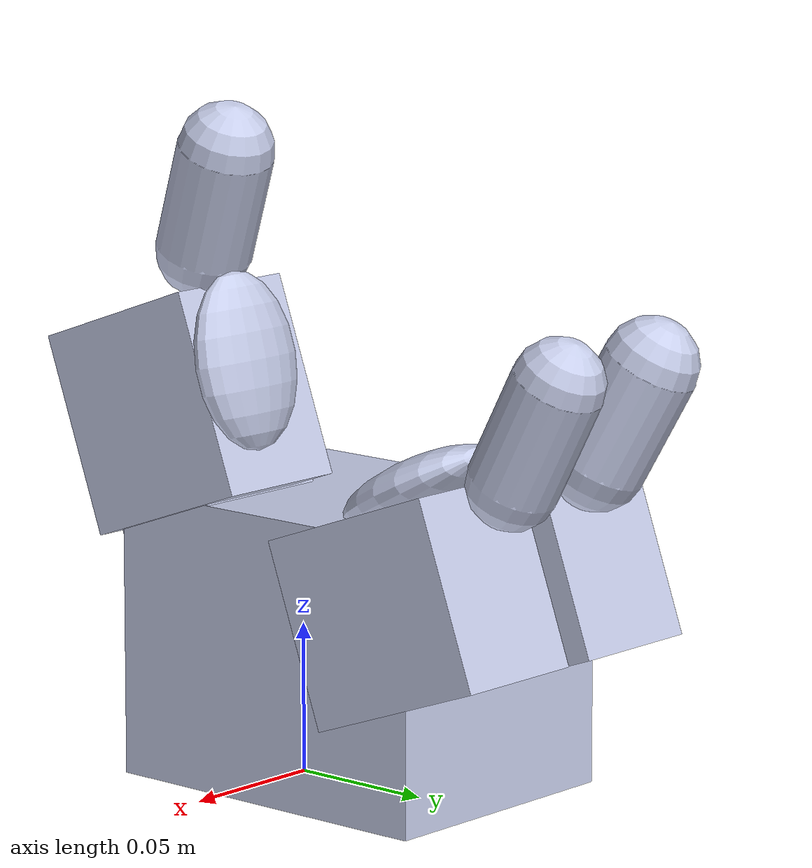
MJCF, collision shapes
<?xml version='1.0' encoding='UTF-8'?>
<mujoco model="DP-Flex_closed_kinematics">
  <option timestep="1e-4"/>
  <option gravity="0 0 0"/>
  <option integrator="implicitfast"/>

  <compiler meshdir="assets" eulerseq="zyx" autolimits="true"/>

  <default>
    <joint damping="0.2" armature="0.01" frictionloss="0.01"/>
    <geom condim="4" contype="1" conaffinity="15" friction="0.9 0.2 0.2" solref="0.001 2"/>
    <motor ctrllimited="true"/>
    <position ctrllimited="true"/>
    <equality solref="0.001 2"/>
    <default class="visualgeom">
      <geom material="visualgeom" condim="1" contype="0" conaffinity="0"/>
    </default>
  </default>

  <asset>
    <texture type="skybox" builtin="gradient" rgb1="1 1 1" rgb2="0.5 0.5 0.5" width="265" height="256"/>
    <mesh name="base_link" file="base_link.STL"/>
    <mesh name="Link_left_abduction" file="Link_left_abduction.STL"/>
    <mesh name="Link_left_flexion" file="Link_left_flexion.STL"/>
    <mesh name="Link_left_finray_proxy" file="Link_left_finray_proxy.STL"/>
    <mesh name="Link_right_abduction" file="Link_right_abduction.STL"/>
    <mesh name="Link_right_flexion" file="Link_right_flexion.STL"/>
    <mesh name="Link_right_finray_proxy" file="Link_right_finray_proxy.STL"/>
    <mesh name="Link_thumb_rotation" file="Link_thumb_rotation.STL"/>
    <mesh name="Link_thumb_abduction" file="Link_thumb_abduction.STL"/>
    <mesh name="Link_thumb_flexion" file="Link_thumb_flexion.STL"/>
    <mesh name="Link_thumb_finray_proxy" file="Link_thumb_finray_proxy.STL"/>
    <texture name="texplane" type="2d" builtin="checker" rgb1=".0 .0 .0" rgb2=".8 .8 .8" width="100" height="100"/>
    <material name="matplane" reflectance="0." texture="texplane" texrepeat="1 1" texuniform="true"/>
    <material name="visualgeom" rgba="0.5 0.9 0.2 1"/>
  <material name="prim_mat" rgba="0.9 0.1 0.1 0.5"/></asset>

  <worldbody>
    <light directional="true" diffuse="0.4 0.4 0.4" specular="0.1 0.1 0.1" pos="0 0 5.0" dir="0 0 -1" castshadow="false"/>
    <light directional="true" diffuse="0.6 0.6 0.6" specular="0.2 0.2 0.2" pos="0 0 4" dir="0 0 -1"/>
    <camera name="fixed" pos="0 -3.0 0.5218365472531615" xyaxes="1 0 0 0 0 1"/>
    <camera name="track" mode="trackcom" pos="0 -3.0 0.5218365472531615" xyaxes="1 0 0 0 0 1"/>

    <body name="root" pos="0 0 0" euler="0 0 0">

      <geom type="mesh" rgba="0.792157 0.819608 0.933333 1" mesh="base_link" contype="0" conaffinity="0" density="0" group="1" class="visualgeom" material="visualgeom"/>
      <geom type="box" rgba="0.792157 0.819608 0.933333 1" contype="1" conaffinity="15" density="0" group="1" class="visualgeom" material="prim_mat" size="0.046000 0.060781 0.047407" pos="-0.006000 0.018441 0.047407" quat="1.000000 0.000000 0.000000 0.000000"/>
      <body name="Link_left_abduction" pos="-0.033 0.044564 0.07714" quat="0.984807 0.17365 0 0">
        <inertial pos="-0.009332 0.029641 -0.016496" quat="-0.6235992262412688 -0.446378711309853 0.6417685277499686 -0.0017910640088146476" mass="0.051148" diaginertia="1.203600e-08 2.013255e-08 2.100335e-08"/>
        <joint name="Joint_left_abduction" pos="0 0 0" axis="0 0 1" range="0 90"/>
        <geom type="mesh" rgba="0.792157 0.819608 0.933333 1" mesh="Link_left_abduction" contype="0" conaffinity="0" density="0" group="1" class="visualgeom" material="visualgeom"/>
        <geom type="box" rgba="0.792157 0.819608 0.933333 1" contype="1" conaffinity="15" density="0" group="1" class="visualgeom" material="prim_mat" size="0.023644 0.033491 0.031249" pos="-0.006656 0.016509 -0.013751" quat="1.000000 0.000000 0.000000 0.000000"/>
        <body name="Link_left_flexion" pos="0.0145 0 0.0135" quat="0.707105 0 0.707108 0">
          <inertial pos="-0.007468 0.022758 -0.014491" quat="-0.4630821096163084 -0.46401458426074643 -0.5337396061169267 0.5341979578852619" mass="0.028728" diaginertia="3.814508e-09 6.422191e-09 9.106331e-09"/>
          <joint name="Joint_left_flexion" pos="0 0 0" axis="0 0 1" range="0 90"/>
          <geom type="mesh" rgba="0.792157 0.819608 0.933333 1" mesh="Link_left_flexion" contype="0" conaffinity="0" density="0" group="1" class="visualgeom" material="visualgeom"/>
          <geom type="ellipsoid" rgba="0.792157 0.819608 0.933333 1" contype="1" conaffinity="15" density="0" group="1" class="visualgeom" material="prim_mat" size="0.009000 0.021429 0.028970" pos="-0.008426 0.024031 -0.014500" quat="0.705384 -0.705384 -0.049325 0.049325"/>
          <body name="Link_left_finray_proxy" pos="-0.0069587 0.049513 -0.0045">
            <inertial pos="-0.001736 0.022618 -0.009800" quat="-1.561525959141133e-05 0.4229383694155905 0.9061584482632186 4.5535051240073894e-05" mass="0.014125" diaginertia="1.206813e-09 5.907188e-09 6.144261e-09"/>
            <joint name="Joint_left_finray_proxy" pos="0 0 0" axis="0 0 1" range="0 70" stiffness="0" springref="-74"/>
            <geom type="mesh" rgba="0.792157 0.819608 0.933333 1" mesh="Link_left_finray_proxy" contype="0" conaffinity="0" density="0" group="1" class="visualgeom" material="visualgeom"/>
          <geom type="capsule" rgba="0.792157 0.819608 0.933333 1" contype="1" conaffinity="15" density="0" group="1" class="visualgeom" material="prim_mat" size="0.015712 0.018701" pos="-0.006698 0.026266 -0.010086" quat="0.263423 -0.688993 0.300062 0.604864"/>
          </body>
        </body>

      </body>
      <body name="Link_right_abduction" pos="0.011 0.044564 0.07714" quat="0.984807 0.17365 0 0">
        <inertial pos="0.009565 0.029612 -0.016480" quat="0.638892318147617 6.482824890542196e-06 -0.6238099429304945 0.45019746875231365" mass="0.051160" diaginertia="1.203057e-08 2.012683e-08 2.105357e-08"/>
        <joint name="Joint_right_abduction" pos="0 0 0" axis="0 0 -1" range="0 90"/>
        <geom type="mesh" rgba="0.792157 0.819608 0.933333 1" mesh="Link_right_abduction" contype="0" conaffinity="0" density="0" group="1" class="visualgeom" material="visualgeom"/>
        <geom type="box" rgba="0.792157 0.819608 0.933333 1" contype="1" conaffinity="15" density="0" group="1" class="visualgeom" material="prim_mat" size="0.023644 0.033491 0.031249" pos="0.006656 0.016509 -0.013751" quat="1.000000 0.000000 0.000000 0.000000"/>
        <body name="Link_right_flexion" pos="-0.0145 0 0.0135" quat="0.707105 0 0.707108 0">
          <inertial pos="-0.007468 0.022759 0.014792" quat="0.4640194547497596 0.463081525208765 0.5341894892865027 -0.5337443546866658" mass="0.028729" diaginertia="3.814533e-09 6.422295e-09 9.106414e-09"/>
          <joint name="Joint_right_flexion" pos="0 0 0" axis="0 0 1" range="0 90"/>
          <geom type="mesh" rgba="0.792157 0.819608 0.933333 1" mesh="Link_right_flexion" contype="0" conaffinity="0" density="0" group="1" class="visualgeom" material="visualgeom"/>
          <geom type="ellipsoid" rgba="0.792157 0.819608 0.933333 1" contype="1" conaffinity="15" density="0" group="1" class="visualgeom" material="prim_mat" size="0.009000 0.021429 0.028970" pos="-0.008426 0.024031 0.014800" quat="0.705384 0.705384 0.049325 0.049325"/>
          <body name="Link_right_finray_proxy" pos="-0.0069587 0.049513 0.0048">
            <inertial pos="-0.001736 0.022618 0.010000" quat="-1.0457691563451743e-05 0.4229366756220633 0.9061592392617048 3.748389642000896e-05" mass="0.014125" diaginertia="1.206821e-09 5.907223e-09 6.144301e-09"/>
            <joint name="Joint_right_finray_proxy" pos="0 0 0" axis="0 0 1" range="0 70" stiffness="0" springref="-74"/>
            <geom type="mesh" rgba="0.792157 0.819608 0.933333 1" mesh="Link_right_finray_proxy" contype="0" conaffinity="0" density="0" group="1" class="visualgeom" material="visualgeom"/>
          <geom type="capsule" rgba="0.792157 0.819608 0.933333 1" contype="1" conaffinity="15" density="0" group="1" class="visualgeom" material="prim_mat" size="0.015000 0.019147" pos="-0.006769 0.026948 0.009999" quat="0.645896 0.287782 0.645896 -0.287782"/>
          </body>
        </body>

      </body>
      <body name="Link_thumb_rotation" pos="0.0282 -0.024299 0.085066" quat="0.984807 0.17365 0 0">
        <inertial pos="-0.012462 0.000702 0.018566" quat="0.9992673782272922 -0.020782076550420105 -0.009188943177094741 -0.030795704705274225" mass="0.047107" diaginertia="8.442760e-09 1.196492e-08 1.327989e-08"/>
        <joint name="Joint_thumb_rotation" pos="0 0 0" axis="0 0 1"/>
        <geom type="mesh" rgba="0.792157 0.819608 0.933333 1" mesh="Link_thumb_rotation" contype="0" conaffinity="0" density="0" group="1" class="visualgeom" material="visualgeom"/>
        <geom type="box" rgba="0.792157 0.819608 0.933333 1" contype="1" conaffinity="15" density="0" group="1" class="visualgeom" material="prim_mat" size="0.025000 0.020273 0.018000" pos="-0.013500 0.001273 0.018000" quat="1.000000 0.000000 0.000000 0.000000"/>
        <body name="Link_thumb_abduction" pos="0 0.021 0.02" quat="0.707105 -0.707108 0 0">
          <inertial pos="-0.009565 -0.029612 -0.016480" quat="6.482824891237288e-06 0.6388923181476168 -0.45019746875231337 0.6238099429304947" mass="0.051160" diaginertia="1.203057e-08 2.012683e-08 2.105357e-08"/>
          <joint name="Joint_thumb_abduction" pos="0 0 0" axis="0 0 1" range="0 90"/>
          <geom type="mesh" rgba="0.792157 0.819608 0.933333 1" mesh="Link_thumb_abduction" contype="0" conaffinity="0" density="0" group="1" class="visualgeom" material="visualgeom"/>
          <geom type="box" rgba="0.792157 0.819608 0.933333 1" contype="1" conaffinity="15" density="0" group="1" class="visualgeom" material="prim_mat" size="0.023644 0.033491 0.031249" pos="-0.006656 -0.016509 -0.013751" quat="1.000000 0.000000 0.000000 0.000000"/>
          <body name="Link_thumb_flexion" pos="0.0145 0 0.0135" quat="0.499998 0.5 0.500002 0.5">
            <inertial pos="-0.022759 0.007468 -0.014792" quat="0.7055255556750184 0.7051770970303916 -0.05028092359573776 0.04930294956293985" mass="0.028729" diaginertia="3.814533e-09 6.422295e-09 9.106414e-09"/>
            <joint name="Joint_thumb_flexion" pos="0 0 0" axis="0 0 -1" range="0 90"/>
            <geom type="mesh" rgba="0.792157 0.819608 0.933333 1" mesh="Link_thumb_flexion" contype="0" conaffinity="0" density="0" group="1" class="visualgeom" material="visualgeom"/>
            <geom type="ellipsoid" rgba="0.792157 0.819608 0.933333 1" contype="1" conaffinity="15" density="0" group="1" class="visualgeom" material="prim_mat" size="0.009000 0.021429 0.028970" pos="-0.024031 0.008426 -0.014800" quat="0.533660 0.533660 0.463904 0.463904"/>
            <body name="Link_thumb_finray_proxy" pos="-0.049513 0.0069587 -0.0048">
              <inertial pos="-0.022618 0.001736 -0.010000" quat="0.9398127342616509 3.3899821964835085e-05 -1.9110412724092084e-05 0.34168995157193854" mass="0.014125" diaginertia="1.206821e-09 5.907223e-09 6.144301e-09"/>
              <joint name="Joint_thumb_finray_proxy" pos="0 0 0" axis="0 0 -1" range="0 70" stiffness="0" springref="-74"/>
              <geom type="mesh" rgba="0.792157 0.819608 0.933333 1" mesh="Link_thumb_finray_proxy" contype="0" conaffinity="0" density="0" group="1" class="visualgeom" material="visualgeom"/>
            <geom type="capsule" rgba="0.792157 0.819608 0.933333 1" contype="1" conaffinity="15" density="0" group="1" class="visualgeom" material="prim_mat" size="0.015712 0.018701" pos="-0.026266 0.006698 -0.009714" quat="0.241435 0.699367 -0.275016 0.613972"/>
            </body>
          </body>

        </body>
      </body>
    <inertial pos="-0.005984 0.009720 0.047763" quat="0.8871513595811813 -0.05802045648788138 0.16592504209001802 0.4266907219868098" mass="0.389760" diaginertia="3.793148e-07 4.525607e-07 4.732907e-07"/></body>
  </worldbody>

  <actuator>
    <position name="Joint_left_abduction_p" joint="Joint_left_abduction" ctrlrange="0 90" timeconst="1"/>
    <position name="Joint_right_abduction_p" joint="Joint_right_abduction" ctrlrange="0 90" timeconst="1"/>
    <position name="Joint_thumb_abduction_p" joint="Joint_thumb_abduction" ctrlrange="0 90" timeconst="1"/>

    <position name="Joint_left_flexion_p" joint="Joint_left_flexion" ctrlrange="0 90" timeconst="1"/>
    <position name="Joint_right_flexion_p" joint="Joint_right_flexion" ctrlrange="0 90" timeconst="1"/>
    <position name="Joint_thumb_flexion_p" joint="Joint_thumb_flexion" ctrlrange="0 90" timeconst="1"/>

    <position name="Joint_left_finray_proxy_p" joint="Joint_left_finray_proxy" ctrlrange="0 70" timeconst="1"/>
    <position name="Joint_right_finray_proxy_p" joint="Joint_right_finray_proxy" ctrlrange="0 70" timeconst="1"/>
    <position name="Joint_thumb_finray_proxy_p" joint="Joint_thumb_finray_proxy" ctrlrange="0 70" timeconst="1"/>

    <position name="Joint_thumb_rotation_p" joint="Joint_thumb_rotation" ctrlrange="-90 90" timeconst="1"/>

  </actuator>

</mujoco>
